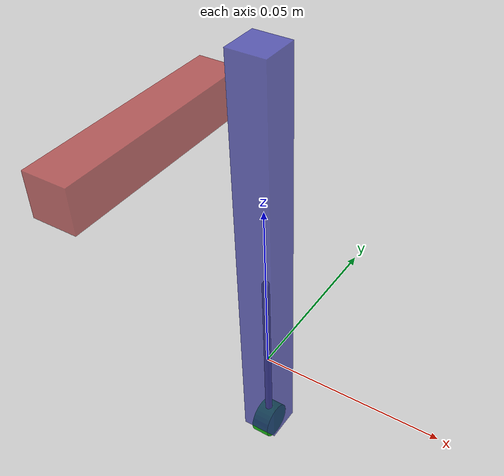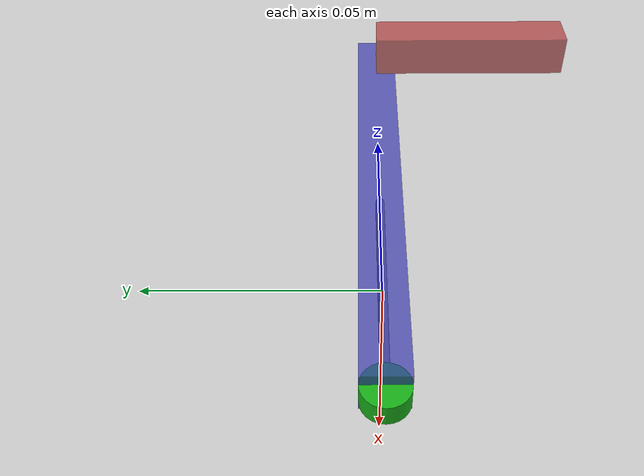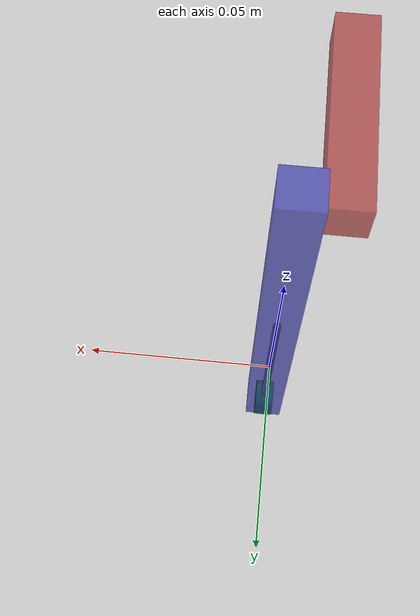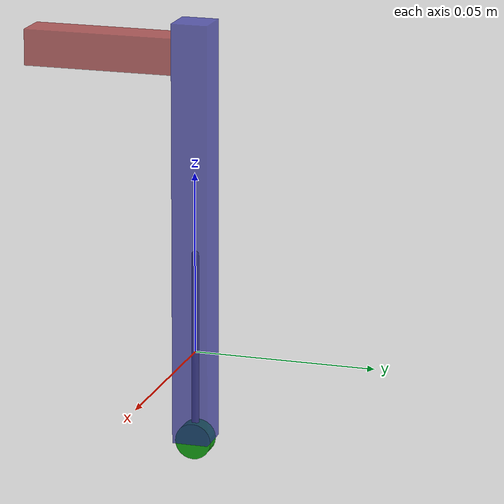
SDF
<?xml version="1.0" encoding="utf-8"?>
<sdf version="1.6" xmlns:drake="drake.mit.edu">
  <model name="Schunk_Gripper" xmlns:drake="drake.mit.edu">
    <link name="base">
      <inertial>
        <mass>0.85</mass>
        <pose>0 0 0 0 0 0 </pose>
        <inertia>
          <ixx>0.1</ixx>
          <ixy>0.0</ixy>
          <ixz>0.0</ixz>
          <iyy>0.1</iyy>
          <iyz>0.0</iyz>
          <izz>0.1</izz>
        </inertia>
      </inertial>
      <visual name="base_visual">
        <pose>0 0 0.0 0 0 0</pose>
        <geometry>
          <capsule>
            <radius>.001</radius>
            <length>.055</length>
          </capsule>
        </geometry>
        <material>
          <diffuse>0.5 0.5 0.5 1</diffuse>
        </material>
      </visual>
    </link>
    <link name="finger_slider">
      <pose relative_to="left_finger">0.01 0.025 -0.105 0 0 0</pose>
      <inertial>
        <mass>0.1</mass>
        <pose>0 0 0 0 0 0 </pose>
        <inertia>
          <ixx>1e-6</ixx>
          <ixy>0.0</ixy>
          <ixz>0.0</ixz>
          <iyy>1e-6</iyy>
          <iyz>0.0</iyz>
          <izz>1e-6</izz>
        </inertia>
      </inertial>
      <visual name="finger_slider_visual">
        <pose>0 0 0 0 1.57 0</pose>
        <geometry>
          <cylinder>
            <radius>.005</radius>
            <length>.005</length>
          </cylinder>
        </geometry>
        <material>
          <diffuse>0.1 0.7 0.1 1</diffuse>
        </material>
      </visual>
    </link>
    <joint name="finger_slider_joint" type="prismatic">
      <child>finger_slider</child>
      <parent>base</parent>
      <axis>
        <xyz>0 0 1</xyz>
        <limit>
          <lower>0.0</lower>
          <upper>0.055</upper>
          <effort>0</effort>
        </limit>
      </axis>
    </joint>
    <link name="left_finger">
      <pose relative_to="base">-0.01 -0.025 0.08 0 0 0</pose>
      <inertial>
        <pose>0 0 0 0 0 0</pose>
        <mass>0.1</mass>
        <inertia>
          <ixx>1.0e-06</ixx>
          <ixy>0.0</ixy>
          <ixz>0.0</ixz>
          <iyy>1.0e-06</iyy>
          <iyz>0.0</iyz>
          <izz>1.0e-6</izz>
        </inertia>
      </inertial>
      <visual name="left_finger_l1_visual">
        <pose>0 0 0 0 0 0</pose>
        <geometry>
          <box>
            <size>.01 0.05 .01</size>
          </box>
        </geometry>
        <material>
          <diffuse>0.7 0.2 0.2 0.7</diffuse>
        </material>
      </visual>
    </link>
    <link name="left_finger_pushrod">
      <pose relative_to="finger_slider">0 0 0.0581485167481 0 0 0</pose>
      <inertial>
        <mass>0.1</mass>
        <pose>0 0 0 0 0 0 </pose>
        <inertia>
          <ixx>1e-6</ixx>
          <ixy>0.0</ixy>
          <ixz>0.0</ixz>
          <iyy>1e-6</iyy>
          <iyz>0.0</iyz>
          <izz>1e-6</izz>
        </inertia>
      </inertial>
      <visual name="left_finger_pushrod_visual">
        <pose>0 0 0 0 0 0</pose>
        <geometry>
          <box>
            <size>0.01 0.01 0.116297033496</size>
          </box>
        </geometry>
        <material>
          <diffuse>0.2 0.2 0.7 0.7</diffuse>
        </material>
      </visual>
    </link>
    <joint name="left_finger_joint" type="prismatic">
      <child>left_finger</child>
      <parent>base</parent>
      <axis>
        <xyz>0 1 0</xyz>
        <limit>
          <lower>-0.055</lower>
          <upper>0.0</upper>
          <effort>1.0</effort>
        </limit>
      </axis>
    </joint>
    <joint name="left_finger_pushrod_joint" type="revolute">
      <pose>0 0 -0.0581485167481 0 0 0</pose>
      <child>left_finger_pushrod</child>
      <parent>finger_slider</parent>
      <axis>
        <xyz>1 0 0</xyz>
        <limit>
          <effort>0</effort>
        </limit>
      </axis>
    </joint>
    <frame attached_to="left_finger" name="frameA">
      <pose relative_to="left_finger">0 -0.025 0 0 -1.57079632679 0</pose>
    </frame>
    <frame attached_to="left_finger_pushrod" name="frameC">
      <pose relative_to="left_finger_pushrod">0 0 0.0581485167481 0 -1.57079632679 0</pose>
    </frame>
    <drake:linear_bushing_rpy>
      <drake:bushing_frameA>frameA</drake:bushing_frameA>
      <drake:bushing_frameC>frameC</drake:bushing_frameC>
      <drake:bushing_torque_stiffness>0 0 0</drake:bushing_torque_stiffness>
      <drake:bushing_torque_damping>0 0 0</drake:bushing_torque_damping>
      <drake:bushing_force_stiffness>7000 7000 7000</drake:bushing_force_stiffness>
      <drake:bushing_force_damping>150 150 150</drake:bushing_force_damping>
    </drake:linear_bushing_rpy>
  </model>
</sdf>
